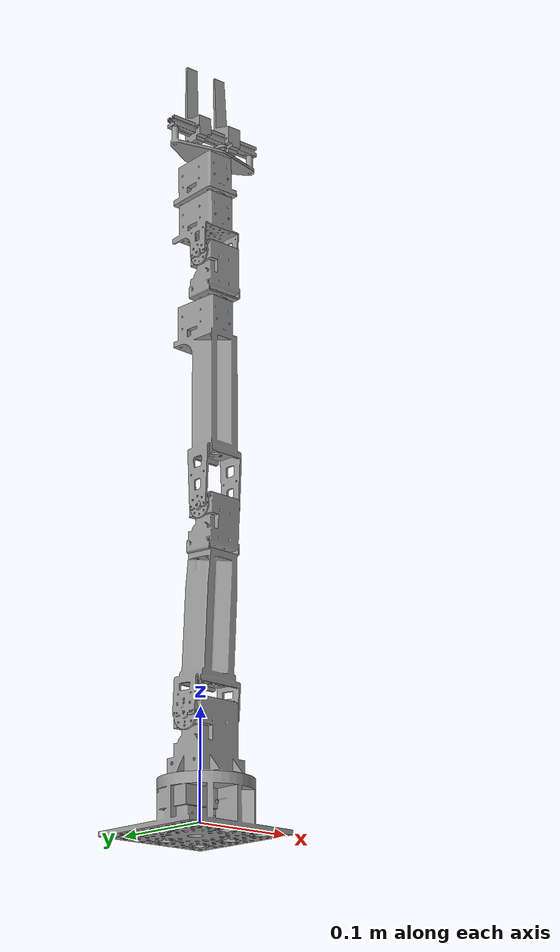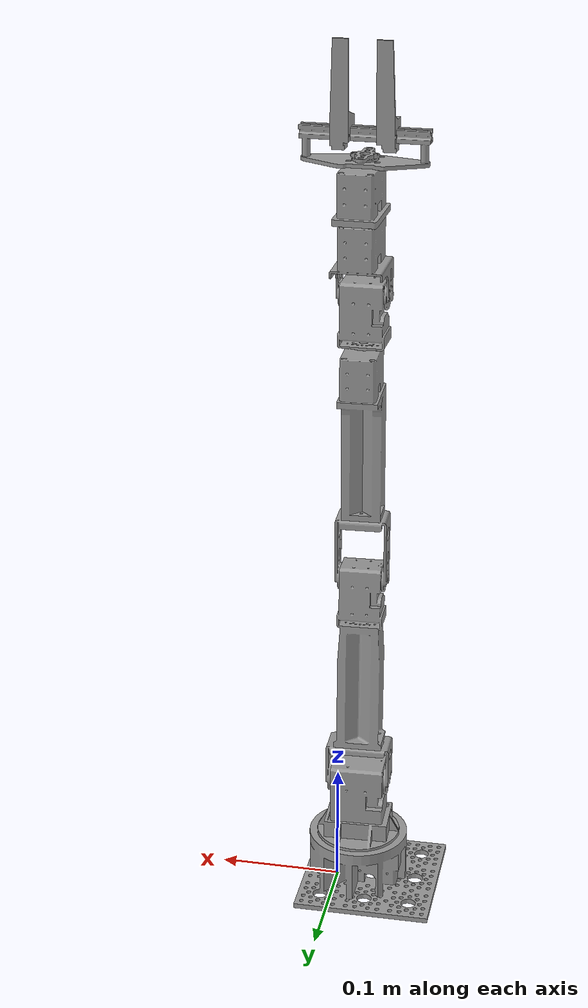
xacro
<?xml version="1.0"?>
<!-- Open_Manipulator Chain -->
<robot name="assem_urdf10_description" xmlns:xacro="http://ros.org/wiki/xacro">

  <!-- Import all Gazebo-customization elements, including Gazebo colors -->
  <xacro:include filename="$(find assem_urdf10_description)/urdf/assem_urdf10_good.gazebo.xacro"/>
  <!-- Import Rviz colors -->
  <xacro:include filename="$(find assem_urdf10_description)/urdf/materials.xacro" />

  <!-- World -->
  <link name="world">
  </link>

  <!-- World fixed joint -->
  <joint name="world_fixed" type="fixed">
    <origin xyz="0 0 0" rpy="0 0 0"/>
    <parent link="world"/>
    <child link="base_link"/>
  </joint>

  <!-- Base Link -->
  <link name="base_link">
	<inertial>
      <origin xyz="-0.0198091676921037 0.00475895888627786 0.0223348947769206" rpy="0 0 0" />
      <mass value="0.152427750768752" />
      <inertia
        ixx="2.87194132562496E-05"
        ixy="-1.00279818908323E-05"
        ixz="-2.09508757427431E-08"
        iyy="7.78197054288688E-06"
        iyz="-6.99543710236704E-08"
        izz="3.51911780883504E-05" />
    </inertial>
	<visual>
      <origin xyz="0 0 0" rpy="0 0 0"/>
		<geometry>
        	<mesh filename="package://assem_urdf10_description/meshes/base_link.STL"/>
		</geometry>
		<material name="grey"/>
	</visual>
	<collision>
      <origin
        xyz="0 0 0"
        rpy="0 0 0" />
      <geometry>
        <mesh
          filename="package://assem_urdf10_description/meshes/base_link.STL" />
      </geometry>
    </collision>
  </link>

  <!-- World fixed joint -->

  <!-- Link 1 -->
  <link name="link1">
    <visual>
      <origin xyz="0 0 0" rpy="0 0 0"/>
      <geometry>
        <mesh filename="package://assem_urdf10_description/meshes/link1.STL"/>
      </geometry>
      <material name="grey"/>
    </visual>

    <collision>
      <origin xyz="0 0 0" rpy="0 0 0"/>
      <geometry>
        <mesh filename="package://assem_urdf10_description/meshes/link1.STL"/>
      </geometry>
    </collision>

	<inertial>
      <origin
        xyz="0.000278221314922764 0.0385027065938655 0.00027822088980917"
        rpy="0 0 0" />
      <mass
        value="0.11236533985333" />
      <inertia
        ixx="2.81176399276257E-05"
        ixy="-2.80186769762472E-07"
        ixz="-1.28362833271696E-08"
        iyy="2.56725666572177E-08"
        iyz="-2.80188501118253E-07"
        izz="2.8117639901043E-05" />
    </inertial>
  </link>

  <!-- Joint 1 -->
  <joint name="id_1" type="revolute">
    <parent link="base_link"/>
    <child link="link1"/>
    <origin xyz="-0.0136208916068772 -0.0223589880134227 0.0216594248998582"
      rpy="1.5707963267949 4.47651619176839E-17 0.819925085155917" />
    <axis xyz="0 1 0"/>
    <limit velocity="1" effort="100" lower="${-pi*1.1}" upper="${pi*0.9}" />
  </joint>

  <!-- Transmission 1 -->
  <transmission name="tran1">
    <type>transmission_interface/SimpleTransmission</type>
    <joint name="id_1">
      <hardwareInterface>hardware_interface/EffortJointInterface</hardwareInterface>
    </joint>
    <actuator name="motor1">
      <hardwareInterface>hardware_interface/EffortJointInterface</hardwareInterface>
      <mechanicalReduction>1</mechanicalReduction>
    </actuator>
  </transmission>

  <!--  Link 2 -->
  <link name="link2">

	<visual>
      <origin xyz="0 0 0" rpy="0 0 0"/>
      <geometry>
        <mesh filename="package://assem_urdf10_description/meshes/link2.STL"/>
      </geometry>
      <material name="grey"/>
    </visual>

    <collision>
      <origin xyz="0 0 0" rpy="0 0 0"/>
      <geometry>
        <mesh filename="package://assem_urdf10_description/meshes/link2.STL"/>
      </geometry>
    </collision>

    <inertial>
      <origin xyz="7.91954423880192E-08 -0.000206940804577149 -0.11551164553495"
        rpy="0 0 0" />
      <mass value="1" />
      <inertia ixx="0.000259374256812497"
        ixy="-1.69932626641961E-12"
        ixz="-7.3691786442418E-10"
        iyy="0.00025773272263344"
        iyz="-1.12871224648229E-06"
        izz="1.64153419814527E-06" />
    </inertial>
  </link>

  <!--  Joint 2 -->
  <joint name="id_2" type="revolute">
    <parent link="link1"/>
    <child link="link2"/>
    <origin xyz="0 0.0635250000000307 0" rpy="-1.63071272414614 -0.783598867449766 -3.05680721740956" />
    <axis xyz="0 -1 0"/>
    <limit velocity="1" effort="100" lower="-2.0" upper="2.0" />
  </joint>

  <!-- Transmission 2 -->
  <transmission name="tran2">
    <type>transmission_interface/SimpleTransmission</type>
    <joint name="id_2">
      <hardwareInterface>hardware_interface/EffortJointInterface</hardwareInterface>
    </joint>
    <actuator name="motor2">
      <hardwareInterface>hardware_interface/EffortJointInterface</hardwareInterface>
      <mechanicalReduction>1</mechanicalReduction>
    </actuator>
  </transmission>

  <!--  Link 3 -->
  <link name="link3">

    <visual>
      <origin xyz="0 0 0" rpy="0 0 0"/>
      <geometry>
        <mesh filename="package://assem_urdf10_description/meshes/link3.STL"/>
      </geometry>
      <material name="grey"/>
    </visual>

    <collision>
      <origin xyz="0 0 0" rpy="0 0 0"/>
      <geometry>
        <mesh filename="package://assem_urdf10_description/meshes/link3.STL"/>
      </geometry>
    </collision>

    <inertial>
      <origin xyz="-0.00664293841766437 1.58910654600442E-09 -0.13681867944283"
        rpy="0 0 0" />
      <mass value="0.0942669059876105" />
      <inertia
        ixx="0.000203456241083354"
        ixy="8.06407407771939E-13"
        ixz="-2.10163208559796E-05"
        iyy="0.000205504465043412"
        iyz="6.77153836191666E-12"
        izz="3.09703203698854E-06" />
    </inertial>
  </link>

  <!--  Joint 3 -->
  <joint name="id_3" type="revolute">
    <parent link="link2"/>
    <child link="link3"/>
    <origin xyz="0 0 -0.1825"
      rpy="9.29069784347397E-16 0.0554201788363836 -7.65146952831404E-15" />
    <axis xyz="0 -1 0"/>
    <limit velocity="1" effort="100" lower="-2.5" upper="2.5" />
  </joint>

  <!-- Transmission 3 -->
  <transmission name="tran3">
    <type>transmission_interface/SimpleTransmission</type>
    <joint name="id_3">
      <hardwareInterface>hardware_interface/EffortJointInterface</hardwareInterface>
    </joint>
    <actuator name="motor3">
      <hardwareInterface>hardware_interface/EffortJointInterface</hardwareInterface>
      <mechanicalReduction>1</mechanicalReduction>
    </actuator>
  </transmission>

  <!--  Link 4 -->
  <link name="link4">
    <visual>
      <origin xyz="0 0 0" rpy="0 0 0"/>
      <geometry>
        <mesh filename="package://assem_urdf10_description/meshes/link4.STL"/>
      </geometry>
      <material name="grey"/>
    </visual>

    <collision>
      <origin xyz="0 0 0" rpy="0 0 0"/>
      <geometry>
        <mesh filename="package://assem_urdf10_description/meshes/link4.STL"/>
      </geometry>
    </collision>

    <inertial>
      <origin xyz="-0.000469459815869877 0.0298275386935002 2.34661512443779E-09"
        rpy="0 0 0" />
      <mass value="0.0437656445694864" />
      <inertia
        ixx="1.90461109892842E-06"
        ixy="3.58008156230865E-08"
        ixz="2.65013940013399E-14"
        iyy="6.75476028612438E-10"
        iyz="-1.52265005738522E-12"
        izz="1.90528657495105E-06" />
    </inertial>

  </link>

  <!--  Joint 4 -->
  <joint name="id_4" type="revolute">
    <parent link="link3"/>
    <child link="link4"/>
    <origin xyz="-0.000499999999997371 0 -0.197871283222506"
      rpy="-1.5707963267949 1.10314860544969E-15 1.62895350452316" />
    <axis xyz="0 1 0"/>
    <limit velocity="1" effort="100" lower="${-pi}" upper="${pi}" />
  </joint>

  <!-- Transmission 4 -->
  <transmission name="tran4">
    <type>transmission_interface/SimpleTransmission</type>
    <joint name="id_4">
      <hardwareInterface>hardware_interface/EffortJointInterface</hardwareInterface>
    </joint>
    <actuator name="motor4">
      <hardwareInterface>hardware_interface/EffortJointInterface</hardwareInterface>
      <mechanicalReduction>1</mechanicalReduction>
    </actuator>
  </transmission>

  <!--  Link 5 -->
  <link name="link5">
    <visual>
      <origin xyz="0 0 0" rpy="0 0 0"/>
      <geometry>
        <mesh filename="package://assem_urdf10_description/meshes/link5.STL"/>
      </geometry>
      <material name="grey"/>
    </visual>

    <collision>
      <origin xyz="0 0 0" rpy="0 0 0"/>
      <geometry>
        <mesh filename="package://assem_urdf10_description/meshes/link5.STL"/>
      </geometry>
    </collision>

    <inertial>
      <origin yz="-0.0113709297401874 3.1790882773497E-09 -0.0418298886384917"
        rpy="0 0 0" />
      <mass value="0.046790034353077" /> KG
      <inertia
        ixx="5.47985439816468E-06"
        ixy="4.15534057499189E-14"
        ixz="-1.05210172039678E-06"
        iyy="5.20259361399776E-06"
        iyz="5.45997209104535E-13"
        izz="7.71547303620717E-07" />
    </inertial>
  </link>

  <!--  Joint 5 -->
  <joint name="id_5" type="revolute">
    <parent link="link4"/>
    <child link="link5"/>
    <origin xyz="0 0.043629 0"
      rpy="-3.1416 1.5487 1.5708" />
    <axis xyz="0 -1 0"/>
    <limit velocity="1" effort="100" lower="${-pi*.5}" upper="${2.2}" />
  </joint>

  <!-- Transmission 5 -->
  <transmission name="tran5">
    <type>transmission_interface/SimpleTransmission</type>
    <joint name="id_5">
      <hardwareInterface>hardware_interface/EffortJointInterface</hardwareInterface>
    </joint>
    <actuator name="motor5">
      <hardwareInterface>hardware_interface/EffortJointInterface</hardwareInterface>
      <mechanicalReduction>1</mechanicalReduction>
    </actuator>
  </transmission>

  <!--  Link 6 -->

  <link name="link6">
    <inertial>
      <origin
        xyz="6.04487289442707E-08 0.0271430423844783 0.0102971530069109"
        rpy="0 0 0" />
      <mass
        value="0.0609796041332711" />
      <inertia
        ixx="1.41804558931135E-05"
        ixy="-1.29820544010615E-10"
        ixz="3.52870893928882E-11"
        iyy="2.89723269866019E-06"
        iyz="3.13664563773867E-06"
        izz="1.46688932707118E-05" />
    </inertial>
    <visual>
      <origin
        xyz="0 0 0"
        rpy="0 0 0" />
      <geometry>
        <mesh filename="package://assem_urdf10_description/meshes/link6.STL" />
      </geometry>
      <material name="grey" />
    </visual>
    <collision>
      <origin xyz="0 0 0" rpy="0 0 0" />
      <geometry>
        <mesh filename="package://assem_urdf10_description/meshes/link6.STL" />
      </geometry>
    </collision>
  </link>

  <joint name="id_6" type="revolute">
    <origin xyz="0 0 -0.061455"
      rpy="-1.5708 3.9642E-15 1.5869" />
    <parent link="link5" />
    <child link="link6" />
    <axis xyz="0 1 0" />
	<limit velocity="1" effort="100" lower="${-pi}" upper="${pi}" />
  </joint>

  <!-- Transmission 6 -->
  <transmission name="tran6">
    <type>transmission_interface/SimpleTransmission</type>
    <joint name="id_6">
      <hardwareInterface>hardware_interface/EffortJointInterface</hardwareInterface>
    </joint>
    <actuator name="motor6">
      <hardwareInterface>hardware_interface/EffortJointInterface</hardwareInterface>
      <mechanicalReduction>1</mechanicalReduction>
    </actuator>
  </transmission>

  <!--  Link 7 -->

<link
    name="link7">
    <inertial>
      <origin
        xyz="8.04777473828455E-10 0.00431553027636999 -2.19556255485337E-08"
        rpy="0 0 0" />
      <mass
        value="0.00209578541384519" />
      <inertia
        ixx="8.17604530499918E-09"
        ixy="3.68467366994562E-15"
        ixz="6.15793056051453E-20"
        iyy="1.68223995842062E-18"
        iyz="-1.00523798160097E-13"
        izz="8.17604530332145E-09" />
    </inertial>
    <visual>
      <origin
        xyz="0 0 0"
        rpy="0 0 0" />
      <geometry>
        <mesh
          filename="package://assem_urdf10_description/meshes/link7.STL" />
      </geometry>
      <material name="grey" />
    </visual>
    <collision>
      <origin
        xyz="0 0 0"
        rpy="0 0 0" />
      <geometry>
        <mesh
          filename="package://assem_urdf10_description/meshes/link7.STL" />
      </geometry>
    </collision>
  </link>

	<joint
    name="joint7"
    type="fixed">
    <origin
      xyz="0 0.040666 0.00025"
      rpy="-1.8471E-13 1.5595 -1.844E-13" />
    <parent
      link="link6" />
    <child
      link="link7" />
    <axis
      xyz="0 1 0" />
  </joint>

  <!--  Fake gripper Link  -->

<link
    name="link8">
    <inertial>
      <origin
        xyz="0 0 0"
        rpy="0 0 0" />
      <mass
        value="1" />
      <inertia
        ixx="0"
        ixy="0"
        ixz="0"
        iyy="0"
        iyz="0"
        izz="0" />
    </inertial>
  </link>

  <joint name="id_7"
    type="continuous">
    <origin
      xyz="0 0 0"
      rpy="0 0 0" />
    <parent
      link="link7" />
    <child
      link="link8" />
    <axis
      xyz="0 1 0" />
  </joint>

  <!-- Transmission 8 -->
  <transmission name="tran9">
    <type>transmission_interface/SimpleTransmission</type>
    <joint name="grip_joint">
      <hardwareInterface>hardware_interface/EffortJointInterface</hardwareInterface>
    </joint>
    <actuator name="motor9">
      <hardwareInterface>hardware_interface/EffortJointInterface</hardwareInterface>
      <mechanicalReduction>1</mechanicalReduction>
    </actuator>
  </transmission>

  <!--  Grip link -->

  <link name="grip_link">
    <visual>
      <origin xyz="0 0 0" rpy="0 0 0"/>
      <geometry>
        <mesh filename="package://assem_urdf10_description/meshes/grip_link.STL"/>
      </geometry>
      <material name="grey"/>
    </visual>

    <collision>
      <origin xyz="0 0 0" rpy="0 0 0"/>
      <geometry>
        <mesh filename="package://assem_urdf10_description/meshes/grip_link.STL" />
      </geometry>
    </collision>

    <inertial>
      <origin xyz="-0.0131288466598847 0.0330730472446744 0.00290325109046016" rpy="0 0 0" />
      <mass value="0.00686258582199906" />
      <inertia
		ixx="6.36347360516341E-08"
        ixy="-1.36942210729795E-07"
        ixz="2.12853953996458E-07"
        iyy="1.05168854732264E-06"
        iyz="2.89551980772431E-08"
        izz="1.02531117729469E-06" />
    </inertial>
  </link>

  <!--  Grip joint -->
  <joint name="grip_joint" type="prismatic">
    <parent link="link7"/>
    <child link="grip_link"/>
    <origin xyz="-0.00017269 0.023188 -0.015347"
      rpy="1.5595 2.2343E-15 -1.5708" />
    <axis xyz="0 -1 0"/>
    <limit velocity="3.5" effort="100" lower="-0.015" upper="0.0105" />
  </joint>

  <!-- Transmission 5 -->
  <transmission name="tran7">
    <type>transmission_interface/SimpleTransmission</type>
    <joint name="grip_joint">
      <hardwareInterface>hardware_interface/EffortJointInterface</hardwareInterface>
    </joint>
    <actuator name="motor7">
      <hardwareInterface>hardware_interface/EffortJointInterface</hardwareInterface>
      <mechanicalReduction>1</mechanicalReduction>
    </actuator>
  </transmission>

  <!--  Grip link sub -->
  <link name="grip_link_sub">
    <visual>
      <origin xyz="0 -0 0" rpy="0 0 0"/>
      <geometry>
        <mesh filename="package://assem_urdf10_description/meshes/grip_link_sub.STL"/>
      </geometry>
      <material name="grey"/>
    </visual>

    <collision>
      <origin xyz="0 -0 0" rpy="0 0 0"/>
      <geometry>
        <mesh filename="package://assem_urdf10_description/meshes/grip_link_sub.STL"/>
      </geometry>
    </collision>

    <inertial>
      <origin xyz="-0.0131288455395543 0.00692695270900137 0.00290325169007665"
        rpy="0 0 0" />
      <mass
        value="0.00686258628874722" />
      <inertia
        ixx="6.36347503506039E-08"
        ixy="1.36942188913236E-07"
        ixz="2.12853969326521E-07"
        iyy="1.0516883459835E-06"
        iyz="-2.89552018070545E-08"
        izz="1.02531095783693E-06" />
    </inertial>
  </link>

  <!--  Grip joint sub -->
  <joint name="grip_joint_sub" type="prismatic">
    <parent link="link7"/>
    <child link="grip_link_sub"/>
    <origin xyz="-0.00027737 0.023288 -0.02465"
      rpy="1.5595 1.5292E-15 -1.5708" />
    <axis xyz="0 1 0"/>
    <limit velocity="3.5" effort="100" lower="-0.015" upper="0.0105" />
  </joint>

  <!-- Transmission 6 -->
  <transmission name="tran8">
    <type>transmission_interface/SimpleTransmission</type>
    <joint name="grip_joint_sub">
      <hardwareInterface>hardware_interface/EffortJointInterface</hardwareInterface>
    </joint>
    <actuator name="motor8">
      <hardwareInterface>hardware_interface/EffortJointInterface</hardwareInterface>
      <mechanicalReduction>1</mechanicalReduction>
    </actuator>
  </transmission>

</robot>
